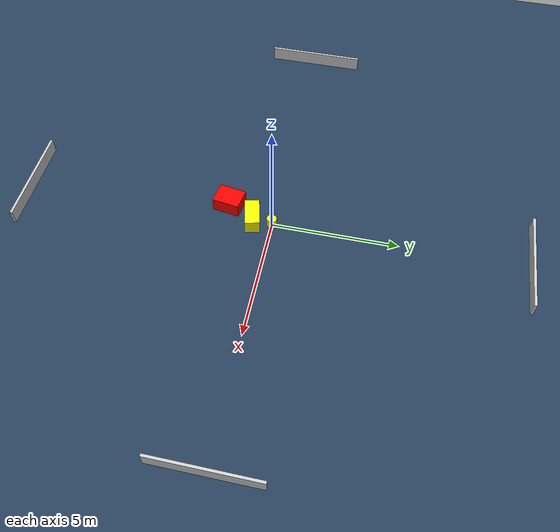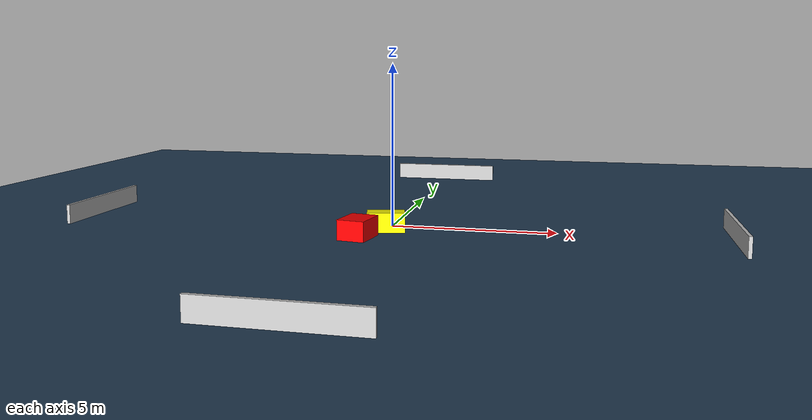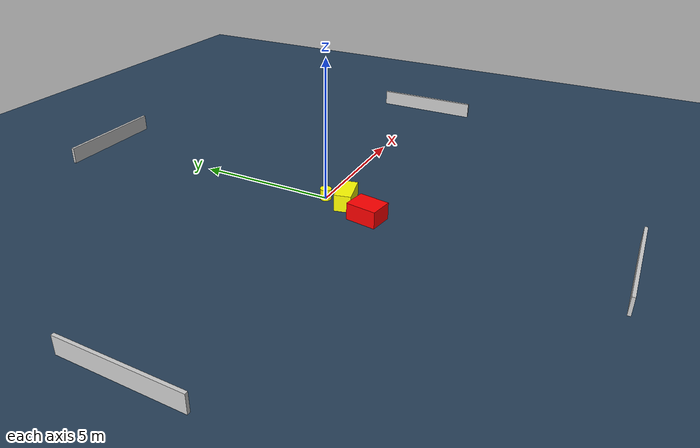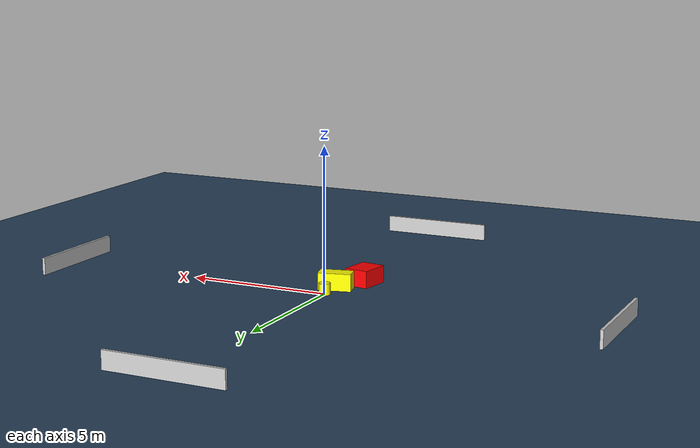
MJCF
<?xml version="1.0" ?>
<mujoco model="generated_environment">
  <option timestep="0.01" integrator="RK4" cone="elliptic"/>
  <default>
    <geom density="1"/>
  </default>
  <asset>
    <texture builtin="gradient" height="3072" name="skybox" rgb1="0.3 0.5 0.7" rgb2="0 0 0" type="skybox" width="512"/>
    <texture builtin="checker" height="300" name="groundplane" rgb1="0.2 0.3 0.4" rgb2="0.1 0.2 0.3" type="2d" width="300"/>
    <material name="groundplane" reflectance="0.2" texrepeat="5 5" texture="groundplane"/>
  </asset>
  <worldbody>
    <light dir="0 0 -1" directional="true" pos="0 0 1.5"/>
    <geom condim="3" friction="0.5 0.005 0.001" material="groundplane" name="floor" pos="0 0 0" size="0 0 0.05" type="plane"/>
    <body name="walls">
      <geom name="wall_1" condim="4" pos="-10.0 0.0 0.3" rgba="0.800000011920929 0.800000011920929 0.800000011920929 1.0" size="0.05 2.0 0.3" type="box"/>
      <geom name="wall_2" condim="4" pos="10.0 0.0 0.3" rgba="0.800000011920929 0.800000011920929 0.800000011920929 1.0" size="0.05 2.0 0.3" type="box"/>
      <geom name="wall_3" condim="4" pos="0.0 -10.0 0.3" rgba="0.800000011920929 0.800000011920929 0.800000011920929 1.0" size="2.0 0.05 0.3" type="box"/>
      <geom name="wall_4" condim="4" pos="0.0 10.0 0.3" rgba="0.800000011920929 0.800000011920929 0.800000011920929 1.0" size="2.0 0.05 0.3" type="box"/>
    </body>
    <body name="robot">
      <joint name="joint_x" type="slide" pos="0 0 0" axis="1 0 0"/>
      <joint name="joint_y" type="slide" pos="0 0 0" axis="0 1 0"/>
      <geom name="robot" type="cylinder" pos="0.0 0.0 0.2" size="0.2 0.2 0.0" mass="5.0" friction="1.0 0.005 0.0001" condim="4" rgba="1.0 1.0 0.0 1.0"/>
    </body>
    <body name="obstacle_1_movable">
      <geom name="obstacle_1_movable" condim="4" pos="-0.0336644677224083 -0.8002688749607267 0.3" euler="0 0 13.021503971235955" friction="0.0 0.005 0.001" rgba="1.0 1.0 0.0 1.0" size="0.5691453952261258 0.29118477313978325 0.3" type="box" mass="0.1"/>
      <joint type="free"/>
    </body>
    <body name="obstacle_2_static">
      <geom name="obstacle_2_static" condim="4" pos="-0.6222343097885009 -1.8679938314382407 0.3" euler="0 0 81.06040776285623" friction="0.0 0.005 0.001" rgba="1.0 0.0 0.0 1.0" size="0.5405833242227263 0.4188664796138454 0.3" type="box"/>
    </body>
  </worldbody>
  <actuator>
    <motor name="actuator_x" joint="joint_x" gear="1" ctrlrange="-1 1"/>
    <motor name="actuator_y" joint="joint_y" gear="1" ctrlrange="-1 1"/>
  </actuator>
</mujoco>
